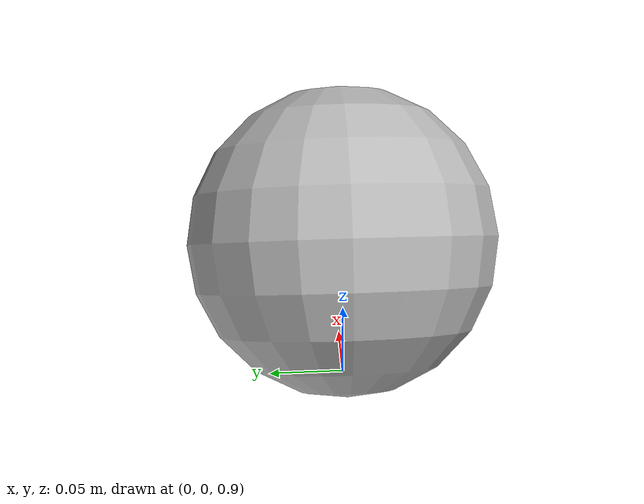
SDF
<?xml version="1.0" ?>

<sdf version="1.6">

  <world name="default">
    <include>
      <uri>model://ground_plane</uri>
    </include>

    <include>
      <uri>model://sun</uri>
    </include>

    <model name="projector_model">
      <pose>0 0 1 0.0 0.5 0.0</pose>
      <link name="projector_link">
        <collision name="collision">
          <geometry>
            <sphere>
              <radius>0.1</radius>
            </sphere>
          </geometry>
        </collision>
        <visual name="visual">
          <geometry>
            <sphere>
              <radius>0.1</radius>
            </sphere>
          </geometry>
          <material>
            <script>Gazebo/Grey</script>
          </material>
        </visual>
        <projector name="texture_projector">
          <pose>0 0 0 0 0 0</pose>
          <texture>green_cross.png</texture>
          <fov>0.5</fov>
          <near_clip>0.1</near_clip>
          <far_clip>10</far_clip>
        </projector>
      </link>
      <static>true</static>
      <plugin name="projector_controller" filename="libgazebo_ros_projector.so">
        <ros>
          <!-- Remap for switch topic to be subscribed -->
          <namespace>/demo</namespace>
          <remapping>switch:=switch_demo</remapping>
        </ros>
        <projector_link>projector_link</projector_link>
        <projector_name>texture_projector</projector_name>
      </plugin>
    </model>

  </world>
</sdf>
